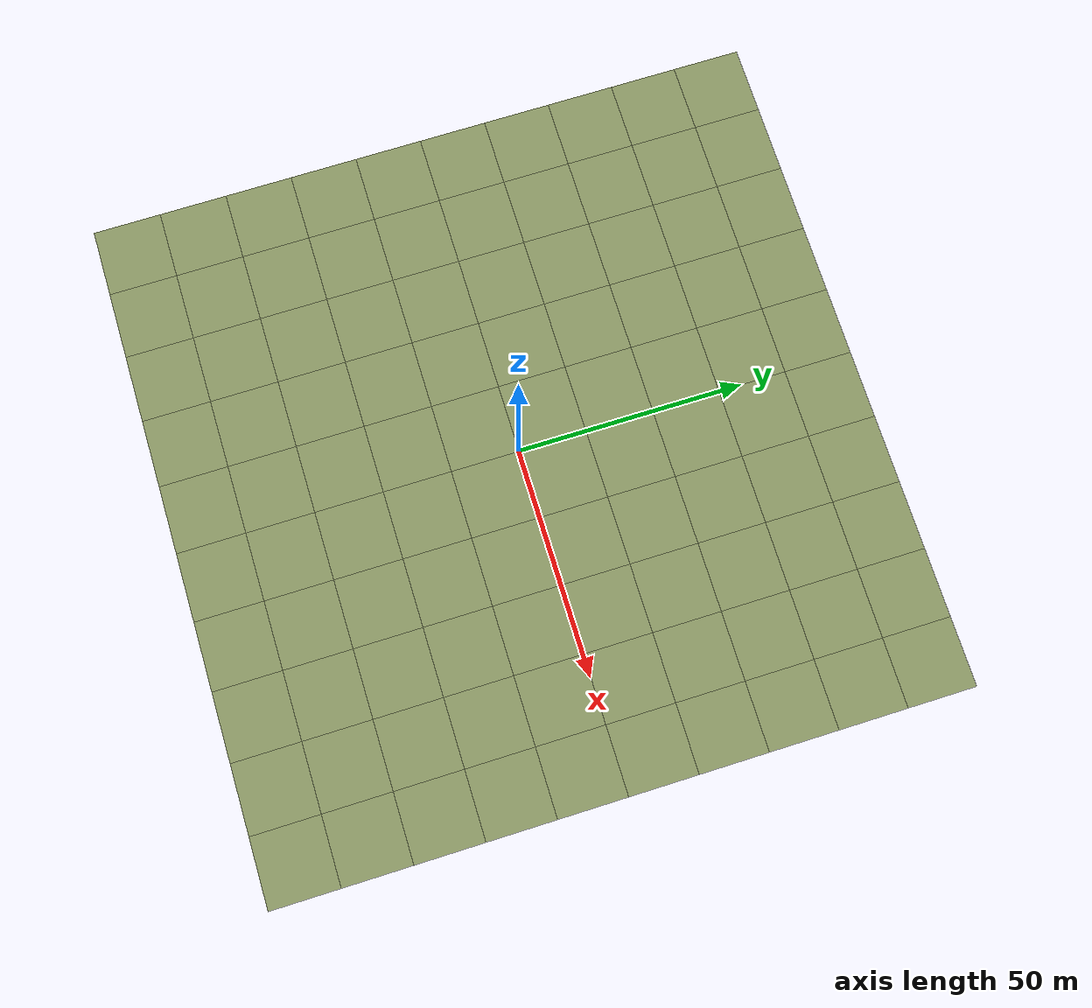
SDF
<?xml version="1.0" ?>
<sdf version="1.5">
  <model name="grass_plane_fine">
    <static>true</static>
    <link name="link">
      <collision name="collision">
        <geometry>
          <box>
            <size>150 150 .1</size>
          </box>
        </geometry>
      </collision>
      <visual name="v0_0">
        <cast_shadows>false</cast_shadows>
        <pose>-67.5 -67.5 0 0 0 4.7123889804</pose>
        <geometry>
          <box>
            <size>15 15 .1</size>
          </box>
        </geometry>
        <material>
          <ambient>0.4 0.45 0.3 1</ambient>
          <diffuse>0.55 0.6 0.4 1</diffuse>
          <specular>0.1 0.1 0.1 1</specular>
          <pbr>
            <metal>
              <albedo_map>materials/textures/grass_fine.jpg</albedo_map>
              <metalness>0.0</metalness>
              <roughness>1.0</roughness>
            </metal>
          </pbr>
        </material>
      </visual>
      <visual name="v0_1">
        <cast_shadows>false</cast_shadows>
        <pose>-67.5 -52.5 0 0 0 4.7123889804</pose>
        <geometry>
          <box>
            <size>15 15 .1</size>
          </box>
        </geometry>
        <material>
          <ambient>0.4 0.45 0.3 1</ambient>
          <diffuse>0.55 0.6 0.4 1</diffuse>
          <specular>0.1 0.1 0.1 1</specular>
          <pbr>
            <metal>
              <albedo_map>materials/textures/grass_fine.jpg</albedo_map>
              <metalness>0.0</metalness>
              <roughness>1.0</roughness>
            </metal>
          </pbr>
        </material>
      </visual>
      <visual name="v0_2">
        <cast_shadows>false</cast_shadows>
        <pose>-67.5 -37.5 0 0 0 4.7123889804</pose>
        <geometry>
          <box>
            <size>15 15 .1</size>
          </box>
        </geometry>
        <material>
          <ambient>0.4 0.45 0.3 1</ambient>
          <diffuse>0.55 0.6 0.4 1</diffuse>
          <specular>0.1 0.1 0.1 1</specular>
          <pbr>
            <metal>
              <albedo_map>materials/textures/grass_fine.jpg</albedo_map>
              <metalness>0.0</metalness>
              <roughness>1.0</roughness>
            </metal>
          </pbr>
        </material>
      </visual>
      <visual name="v0_3">
        <cast_shadows>false</cast_shadows>
        <pose>-67.5 -22.5 0 0 0 4.7123889804</pose>
        <geometry>
          <box>
            <size>15 15 .1</size>
          </box>
        </geometry>
        <material>
          <ambient>0.4 0.45 0.3 1</ambient>
          <diffuse>0.55 0.6 0.4 1</diffuse>
          <specular>0.1 0.1 0.1 1</specular>
          <pbr>
            <metal>
              <albedo_map>materials/textures/grass_fine.jpg</albedo_map>
              <metalness>0.0</metalness>
              <roughness>1.0</roughness>
            </metal>
          </pbr>
        </material>
      </visual>
      <visual name="v0_4">
        <cast_shadows>false</cast_shadows>
        <pose>-67.5 -7.5 0 0 0 0.0000000000</pose>
        <geometry>
          <box>
            <size>15 15 .1</size>
          </box>
        </geometry>
        <material>
          <ambient>0.4 0.45 0.3 1</ambient>
          <diffuse>0.55 0.6 0.4 1</diffuse>
          <specular>0.1 0.1 0.1 1</specular>
          <pbr>
            <metal>
              <albedo_map>materials/textures/grass_fine.jpg</albedo_map>
              <metalness>0.0</metalness>
              <roughness>1.0</roughness>
            </metal>
          </pbr>
        </material>
      </visual>
      <visual name="v0_5">
        <cast_shadows>false</cast_shadows>
        <pose>-67.5 7.5 0 0 0 4.7123889804</pose>
        <geometry>
          <box>
            <size>15 15 .1</size>
          </box>
        </geometry>
        <material>
          <ambient>0.4 0.45 0.3 1</ambient>
          <diffuse>0.55 0.6 0.4 1</diffuse>
          <specular>0.1 0.1 0.1 1</specular>
          <pbr>
            <metal>
              <albedo_map>materials/textures/grass_fine.jpg</albedo_map>
              <metalness>0.0</metalness>
              <roughness>1.0</roughness>
            </metal>
          </pbr>
        </material>
      </visual>
      <visual name="v0_6">
        <cast_shadows>false</cast_shadows>
        <pose>-67.5 22.5 0 0 0 4.7123889804</pose>
        <geometry>
          <box>
            <size>15 15 .1</size>
          </box>
        </geometry>
        <material>
          <ambient>0.4 0.45 0.3 1</ambient>
          <diffuse>0.55 0.6 0.4 1</diffuse>
          <specular>0.1 0.1 0.1 1</specular>
          <pbr>
            <metal>
              <albedo_map>materials/textures/grass_fine.jpg</albedo_map>
              <metalness>0.0</metalness>
              <roughness>1.0</roughness>
            </metal>
          </pbr>
        </material>
      </visual>
      <visual name="v0_7">
        <cast_shadows>false</cast_shadows>
        <pose>-67.5 37.5 0 0 0 1.5707963268</pose>
        <geometry>
          <box>
            <size>15 15 .1</size>
          </box>
        </geometry>
        <material>
          <ambient>0.4 0.45 0.3 1</ambient>
          <diffuse>0.55 0.6 0.4 1</diffuse>
          <specular>0.1 0.1 0.1 1</specular>
          <pbr>
            <metal>
              <albedo_map>materials/textures/grass_fine.jpg</albedo_map>
              <metalness>0.0</metalness>
              <roughness>1.0</roughness>
            </metal>
          </pbr>
        </material>
      </visual>
      <visual name="v0_8">
        <cast_shadows>false</cast_shadows>
        <pose>-67.5 52.5 0 0 0 0.0000000000</pose>
        <geometry>
          <box>
            <size>15 15 .1</size>
          </box>
        </geometry>
        <material>
          <ambient>0.4 0.45 0.3 1</ambient>
          <diffuse>0.55 0.6 0.4 1</diffuse>
          <specular>0.1 0.1 0.1 1</specular>
          <pbr>
            <metal>
              <albedo_map>materials/textures/grass_fine.jpg</albedo_map>
              <metalness>0.0</metalness>
              <roughness>1.0</roughness>
            </metal>
          </pbr>
        </material>
      </visual>
      <visual name="v0_9">
        <cast_shadows>false</cast_shadows>
        <pose>-67.5 67.5 0 0 0 0.0000000000</pose>
        <geometry>
          <box>
            <size>15 15 .1</size>
          </box>
        </geometry>
        <material>
          <ambient>0.4 0.45 0.3 1</ambient>
          <diffuse>0.55 0.6 0.4 1</diffuse>
          <specular>0.1 0.1 0.1 1</specular>
          <pbr>
            <metal>
              <albedo_map>materials/textures/grass_fine.jpg</albedo_map>
              <metalness>0.0</metalness>
              <roughness>1.0</roughness>
            </metal>
          </pbr>
        </material>
      </visual>
      <visual name="v1_0">
        <cast_shadows>false</cast_shadows>
        <pose>-52.5 -67.5 0 0 0 4.7123889804</pose>
        <geometry>
          <box>
            <size>15 15 .1</size>
          </box>
        </geometry>
        <material>
          <ambient>0.4 0.45 0.3 1</ambient>
          <diffuse>0.55 0.6 0.4 1</diffuse>
          <specular>0.1 0.1 0.1 1</specular>
          <pbr>
            <metal>
              <albedo_map>materials/textures/grass_fine.jpg</albedo_map>
              <metalness>0.0</metalness>
              <roughness>1.0</roughness>
            </metal>
          </pbr>
        </material>
      </visual>
      <visual name="v1_1">
        <cast_shadows>false</cast_shadows>
        <pose>-52.5 -52.5 0 0 0 4.7123889804</pose>
        <geometry>
          <box>
            <size>15 15 .1</size>
          </box>
        </geometry>
        <material>
          <ambient>0.4 0.45 0.3 1</ambient>
          <diffuse>0.55 0.6 0.4 1</diffuse>
          <specular>0.1 0.1 0.1 1</specular>
          <pbr>
            <metal>
              <albedo_map>materials/textures/grass_fine.jpg</albedo_map>
              <metalness>0.0</metalness>
              <roughness>1.0</roughness>
            </metal>
          </pbr>
        </material>
      </visual>
      <visual name="v1_2">
        <cast_shadows>false</cast_shadows>
        <pose>-52.5 -37.5 0 0 0 3.1415926536</pose>
        <geometry>
          <box>
            <size>15 15 .1</size>
          </box>
        </geometry>
        <material>
          <ambient>0.4 0.45 0.3 1</ambient>
          <diffuse>0.55 0.6 0.4 1</diffuse>
          <specular>0.1 0.1 0.1 1</specular>
          <pbr>
            <metal>
              <albedo_map>materials/textures/grass_fine.jpg</albedo_map>
              <metalness>0.0</metalness>
              <roughness>1.0</roughness>
            </metal>
          </pbr>
        </material>
      </visual>
      <visual name="v1_3">
        <cast_shadows>false</cast_shadows>
        <pose>-52.5 -22.5 0 0 0 3.1415926536</pose>
        <geometry>
          <box>
            <size>15 15 .1</size>
          </box>
        </geometry>
        <material>
          <ambient>0.4 0.45 0.3 1</ambient>
          <diffuse>0.55 0.6 0.4 1</diffuse>
          <specular>0.1 0.1 0.1 1</specular>
          <pbr>
            <metal>
              <albedo_map>materials/textures/grass_fine.jpg</albedo_map>
              <metalness>0.0</metalness>
              <roughness>1.0</roughness>
            </metal>
          </pbr>
        </material>
      </visual>
      <visual name="v1_4">
        <cast_shadows>false</cast_shadows>
        <pose>-52.5 -7.5 0 0 0 4.7123889804</pose>
        <geometry>
          <box>
            <size>15 15 .1</size>
          </box>
        </geometry>
        <material>
          <ambient>0.4 0.45 0.3 1</ambient>
          <diffuse>0.55 0.6 0.4 1</diffuse>
          <specular>0.1 0.1 0.1 1</specular>
          <pbr>
            <metal>
              <albedo_map>materials/textures/grass_fine.jpg</albedo_map>
              <metalness>0.0</metalness>
              <roughness>1.0</roughness>
            </metal>
          </pbr>
        </material>
      </visual>
      <visual name="v1_5">
        <cast_shadows>false</cast_shadows>
        <pose>-52.5 7.5 0 0 0 0.0000000000</pose>
        <geometry>
          <box>
            <size>15 15 .1</size>
          </box>
        </geometry>
        <material>
          <ambient>0.4 0.45 0.3 1</ambient>
          <diffuse>0.55 0.6 0.4 1</diffuse>
          <specular>0.1 0.1 0.1 1</specular>
          <pbr>
            <metal>
              <albedo_map>materials/textures/grass_fine.jpg</albedo_map>
              <metalness>0.0</metalness>
              <roughness>1.0</roughness>
            </metal>
          </pbr>
        </material>
      </visual>
      <visual name="v1_6">
        <cast_shadows>false</cast_shadows>
        <pose>-52.5 22.5 0 0 0 4.7123889804</pose>
        <geometry>
          <box>
            <size>15 15 .1</size>
          </box>
        </geometry>
        <material>
          <ambient>0.4 0.45 0.3 1</ambient>
          <diffuse>0.55 0.6 0.4 1</diffuse>
          <specular>0.1 0.1 0.1 1</specular>
          <pbr>
            <metal>
              <albedo_map>materials/textures/grass_fine.jpg</albedo_map>
              <metalness>0.0</metalness>
              <roughness>1.0</roughness>
            </metal>
          </pbr>
        </material>
      </visual>
      <visual name="v1_7">
        <cast_shadows>false</cast_shadows>
        <pose>-52.5 37.5 0 0 0 4.7123889804</pose>
        <geometry>
          <box>
            <size>15 15 .1</size>
          </box>
        </geometry>
        <material>
          <ambient>0.4 0.45 0.3 1</ambient>
          <diffuse>0.55 0.6 0.4 1</diffuse>
          <specular>0.1 0.1 0.1 1</specular>
          <pbr>
            <metal>
              <albedo_map>materials/textures/grass_fine.jpg</albedo_map>
              <metalness>0.0</metalness>
              <roughness>1.0</roughness>
            </metal>
          </pbr>
        </material>
      </visual>
      <visual name="v1_8">
        <cast_shadows>false</cast_shadows>
        <pose>-52.5 52.5 0 0 0 0.0000000000</pose>
        <geometry>
          <box>
            <size>15 15 .1</size>
          </box>
        </geometry>
        <material>
          <ambient>0.4 0.45 0.3 1</ambient>
          <diffuse>0.55 0.6 0.4 1</diffuse>
          <specular>0.1 0.1 0.1 1</specular>
          <pbr>
            <metal>
              <albedo_map>materials/textures/grass_fine.jpg</albedo_map>
              <metalness>0.0</metalness>
              <roughness>1.0</roughness>
            </metal>
          </pbr>
        </material>
      </visual>
      <visual name="v1_9">
        <cast_shadows>false</cast_shadows>
        <pose>-52.5 67.5 0 0 0 4.7123889804</pose>
        <geometry>
          <box>
            <size>15 15 .1</size>
          </box>
        </geometry>
        <material>
          <ambient>0.4 0.45 0.3 1</ambient>
          <diffuse>0.55 0.6 0.4 1</diffuse>
          <specular>0.1 0.1 0.1 1</specular>
          <pbr>
            <metal>
              <albedo_map>materials/textures/grass_fine.jpg</albedo_map>
              <metalness>0.0</metalness>
              <roughness>1.0</roughness>
            </metal>
          </pbr>
        </material>
      </visual>
      <visual name="v2_0">
        <cast_shadows>false</cast_shadows>
        <pose>-37.5 -67.5 0 0 0 4.7123889804</pose>
        <geometry>
          <box>
            <size>15 15 .1</size>
          </box>
        </geometry>
        <material>
          <ambient>0.4 0.45 0.3 1</ambient>
          <diffuse>0.55 0.6 0.4 1</diffuse>
          <specular>0.1 0.1 0.1 1</specular>
          <pbr>
            <metal>
              <albedo_map>materials/textures/grass_fine.jpg</albedo_map>
              <metalness>0.0</metalness>
              <roughness>1.0</roughness>
            </metal>
          </pbr>
        </material>
      </visual>
      <visual name="v2_1">
        <cast_shadows>false</cast_shadows>
        <pose>-37.5 -52.5 0 0 0 1.5707963268</pose>
        <geometry>
          <box>
            <size>15 15 .1</size>
          </box>
        </geometry>
        <material>
          <ambient>0.4 0.45 0.3 1</ambient>
          <diffuse>0.55 0.6 0.4 1</diffuse>
          <specular>0.1 0.1 0.1 1</specular>
          <pbr>
            <metal>
              <albedo_map>materials/textures/grass_fine.jpg</albedo_map>
              <metalness>0.0</metalness>
              <roughness>1.0</roughness>
            </metal>
          </pbr>
        </material>
      </visual>
      <visual name="v2_2">
        <cast_shadows>false</cast_shadows>
        <pose>-37.5 -37.5 0 0 0 1.5707963268</pose>
        <geometry>
          <box>
            <size>15 15 .1</size>
          </box>
        </geometry>
        <material>
          <ambient>0.4 0.45 0.3 1</ambient>
          <diffuse>0.55 0.6 0.4 1</diffuse>
          <specular>0.1 0.1 0.1 1</specular>
          <pbr>
            <metal>
              <albedo_map>materials/textures/grass_fine.jpg</albedo_map>
              <metalness>0.0</metalness>
              <roughness>1.0</roughness>
            </metal>
          </pbr>
        </material>
      </visual>
      <visual name="v2_3">
        <cast_shadows>false</cast_shadows>
        <pose>-37.5 -22.5 0 0 0 4.7123889804</pose>
        <geometry>
          <box>
            <size>15 15 .1</size>
          </box>
        </geometry>
        <material>
          <ambient>0.4 0.45 0.3 1</ambient>
          <diffuse>0.55 0.6 0.4 1</diffuse>
          <specular>0.1 0.1 0.1 1</specular>
          <pbr>
            <metal>
              <albedo_map>materials/textures/grass_fine.jpg</albedo_map>
              <metalness>0.0</metalness>
              <roughness>1.0</roughness>
            </metal>
          </pbr>
        </material>
      </visual>
      <visual name="v2_4">
        <cast_shadows>false</cast_shadows>
        <pose>-37.5 -7.5 0 0 0 4.7123889804</pose>
        <geometry>
          <box>
            <size>15 15 .1</size>
          </box>
        </geometry>
        <material>
          <ambient>0.4 0.45 0.3 1</ambient>
          <diffuse>0.55 0.6 0.4 1</diffuse>
          <specular>0.1 0.1 0.1 1</specular>
          <pbr>
            <metal>
              <albedo_map>materials/textures/grass_fine.jpg</albedo_map>
              <metalness>0.0</metalness>
              <roughness>1.0</roughness>
            </metal>
          </pbr>
        </material>
      </visual>
      <visual name="v2_5">
        <cast_shadows>false</cast_shadows>
        <pose>-37.5 7.5 0 0 0 0.0000000000</pose>
        <geometry>
          <box>
            <size>15 15 .1</size>
          </box>
        </geometry>
        <material>
          <ambient>0.4 0.45 0.3 1</ambient>
          <diffuse>0.55 0.6 0.4 1</diffuse>
          <specular>0.1 0.1 0.1 1</specular>
          <pbr>
            <metal>
              <albedo_map>materials/textures/grass_fine.jpg</albedo_map>
              <metalness>0.0</metalness>
              <roughness>1.0</roughness>
            </metal>
          </pbr>
        </material>
      </visual>
      <visual name="v2_6">
        <cast_shadows>false</cast_shadows>
        <pose>-37.5 22.5 0 0 0 3.1415926536</pose>
        <geometry>
          <box>
            <size>15 15 .1</size>
          </box>
        </geometry>
        <material>
          <ambient>0.4 0.45 0.3 1</ambient>
          <diffuse>0.55 0.6 0.4 1</diffuse>
          <specular>0.1 0.1 0.1 1</specular>
          <pbr>
            <metal>
              <albedo_map>materials/textures/grass_fine.jpg</albedo_map>
              <metalness>0.0</metalness>
              <roughness>1.0</roughness>
            </metal>
          </pbr>
        </material>
      </visual>
      <visual name="v2_7">
        <cast_shadows>false</cast_shadows>
        <pose>-37.5 37.5 0 0 0 1.5707963268</pose>
        <geometry>
          <box>
            <size>15 15 .1</size>
          </box>
        </geometry>
        <material>
          <ambient>0.4 0.45 0.3 1</ambient>
          <diffuse>0.55 0.6 0.4 1</diffuse>
          <specular>0.1 0.1 0.1 1</specular>
          <pbr>
            <metal>
              <albedo_map>materials/textures/grass_fine.jpg</albedo_map>
              <metalness>0.0</metalness>
              <roughness>1.0</roughness>
            </metal>
          </pbr>
        </material>
      </visual>
      <visual name="v2_8">
        <cast_shadows>false</cast_shadows>
        <pose>-37.5 52.5 0 0 0 1.5707963268</pose>
        <geometry>
          <box>
            <size>15 15 .1</size>
          </box>
        </geometry>
        <material>
          <ambient>0.4 0.45 0.3 1</ambient>
          <diffuse>0.55 0.6 0.4 1</diffuse>
          <specular>0.1 0.1 0.1 1</specular>
          <pbr>
            <metal>
              <albedo_map>materials/textures/grass_fine.jpg</albedo_map>
              <metalness>0.0</metalness>
              <roughness>1.0</roughness>
            </metal>
          </pbr>
        </material>
      </visual>
      <visual name="v2_9">
        <cast_shadows>false</cast_shadows>
        <pose>-37.5 67.5 0 0 0 4.7123889804</pose>
        <geometry>
          <box>
            <size>15 15 .1</size>
          </box>
        </geometry>
        <material>
          <ambient>0.4 0.45 0.3 1</ambient>
          <diffuse>0.55 0.6 0.4 1</diffuse>
          <specular>0.1 0.1 0.1 1</specular>
          <pbr>
            <metal>
              <albedo_map>materials/textures/grass_fine.jpg</albedo_map>
              <metalness>0.0</metalness>
              <roughness>1.0</roughness>
            </metal>
          </pbr>
        </material>
      </visual>
      <visual name="v3_0">
        <cast_shadows>false</cast_shadows>
        <pose>-22.5 -67.5 0 0 0 3.1415926536</pose>
        <geometry>
          <box>
            <size>15 15 .1</size>
          </box>
        </geometry>
        <material>
          <ambient>0.4 0.45 0.3 1</ambient>
          <diffuse>0.55 0.6 0.4 1</diffuse>
          <specular>0.1 0.1 0.1 1</specular>
          <pbr>
            <metal>
              <albedo_map>materials/textures/grass_fine.jpg</albedo_map>
              <metalness>0.0</metalness>
              <roughness>1.0</roughness>
            </metal>
          </pbr>
        </material>
      </visual>
      <visual name="v3_1">
        <cast_shadows>false</cast_shadows>
        <pose>-22.5 -52.5 0 0 0 1.5707963268</pose>
        <geometry>
          <box>
            <size>15 15 .1</size>
          </box>
        </geometry>
        <material>
          <ambient>0.4 0.45 0.3 1</ambient>
          <diffuse>0.55 0.6 0.4 1</diffuse>
          <specular>0.1 0.1 0.1 1</specular>
          <pbr>
            <metal>
              <albedo_map>materials/textures/grass_fine.jpg</albedo_map>
              <metalness>0.0</metalness>
              <roughness>1.0</roughness>
            </metal>
          </pbr>
        </material>
      </visual>
      <visual name="v3_2">
        <cast_shadows>false</cast_shadows>
        <pose>-22.5 -37.5 0 0 0 4.7123889804</pose>
        <geometry>
          <box>
            <size>15 15 .1</size>
          </box>
        </geometry>
        <material>
          <ambient>0.4 0.45 0.3 1</ambient>
          <diffuse>0.55 0.6 0.4 1</diffuse>
          <specular>0.1 0.1 0.1 1</specular>
          <pbr>
            <metal>
              <albedo_map>materials/textures/grass_fine.jpg</albedo_map>
              <metalness>0.0</metalness>
              <roughness>1.0</roughness>
            </metal>
          </pbr>
        </material>
      </visual>
      <visual name="v3_3">
        <cast_shadows>false</cast_shadows>
        <pose>-22.5 -22.5 0 0 0 3.1415926536</pose>
        <geometry>
          <box>
            <size>15 15 .1</size>
          </box>
        </geometry>
        <material>
          <ambient>0.4 0.45 0.3 1</ambient>
          <diffuse>0.55 0.6 0.4 1</diffuse>
          <specular>0.1 0.1 0.1 1</specular>
          <pbr>
            <metal>
              <albedo_map>materials/textures/grass_fine.jpg</albedo_map>
              <metalness>0.0</metalness>
              <roughness>1.0</roughness>
            </metal>
          </pbr>
        </material>
      </visual>
      <visual name="v3_4">
        <cast_shadows>false</cast_shadows>
        <pose>-22.5 -7.5 0 0 0 4.7123889804</pose>
        <geometry>
          <box>
            <size>15 15 .1</size>
          </box>
        </geometry>
        <material>
          <ambient>0.4 0.45 0.3 1</ambient>
          <diffuse>0.55 0.6 0.4 1</diffuse>
          <specular>0.1 0.1 0.1 1</specular>
          <pbr>
            <metal>
              <albedo_map>materials/textures/grass_fine.jpg</albedo_map>
              <metalness>0.0</metalness>
              <roughness>1.0</roughness>
            </metal>
          </pbr>
        </material>
      </visual>
      <visual name="v3_5">
        <cast_shadows>false</cast_shadows>
        <pose>-22.5 7.5 0 0 0 0.0000000000</pose>
        <geometry>
          <box>
            <size>15 15 .1</size>
          </box>
        </geometry>
        <material>
          <ambient>0.4 0.45 0.3 1</ambient>
          <diffuse>0.55 0.6 0.4 1</diffuse>
          <specular>0.1 0.1 0.1 1</specular>
          <pbr>
            <metal>
              <albedo_map>materials/textures/grass_fine.jpg</albedo_map>
              <metalness>0.0</metalness>
              <roughness>1.0</roughness>
            </metal>
          </pbr>
        </material>
      </visual>
      <visual name="v3_6">
        <cast_shadows>false</cast_shadows>
        <pose>-22.5 22.5 0 0 0 4.7123889804</pose>
        <geometry>
          <box>
            <size>15 15 .1</size>
          </box>
        </geometry>
        <material>
          <ambient>0.4 0.45 0.3 1</ambient>
          <diffuse>0.55 0.6 0.4 1</diffuse>
          <specular>0.1 0.1 0.1 1</specular>
          <pbr>
            <metal>
              <albedo_map>materials/textures/grass_fine.jpg</albedo_map>
              <metalness>0.0</metalness>
              <roughness>1.0</roughness>
            </metal>
          </pbr>
        </material>
      </visual>
      <visual name="v3_7">
        <cast_shadows>false</cast_shadows>
        <pose>-22.5 37.5 0 0 0 4.7123889804</pose>
        <geometry>
          <box>
            <size>15 15 .1</size>
          </box>
        </geometry>
        <material>
          <ambient>0.4 0.45 0.3 1</ambient>
          <diffuse>0.55 0.6 0.4 1</diffuse>
          <specular>0.1 0.1 0.1 1</specular>
          <pbr>
            <metal>
              <albedo_map>materials/textures/grass_fine.jpg</albedo_map>
              <metalness>0.0</metalness>
              <roughness>1.0</roughness>
            </metal>
          </pbr>
        </material>
      </visual>
      <visual name="v3_8">
        <cast_shadows>false</cast_shadows>
        <pose>-22.5 52.5 0 0 0 3.1415926536</pose>
        <geometry>
          <box>
            <size>15 15 .1</size>
          </box>
        </geometry>
        <material>
          <ambient>0.4 0.45 0.3 1</ambient>
          <diffuse>0.55 0.6 0.4 1</diffuse>
          <specular>0.1 0.1 0.1 1</specular>
          <pbr>
            <metal>
              <albedo_map>materials/textures/grass_fine.jpg</albedo_map>
              <metalness>0.0</metalness>
              <roughness>1.0</roughness>
            </metal>
          </pbr>
        </material>
      </visual>
      <visual name="v3_9">
        <cast_shadows>false</cast_shadows>
        <pose>-22.5 67.5 0 0 0 1.5707963268</pose>
        <geometry>
          <box>
            <size>15 15 .1</size>
          </box>
        </geometry>
        <material>
          <ambient>0.4 0.45 0.3 1</ambient>
          <diffuse>0.55 0.6 0.4 1</diffuse>
          <specular>0.1 0.1 0.1 1</specular>
          <pbr>
            <metal>
              <albedo_map>materials/textures/grass_fine.jpg</albedo_map>
              <metalness>0.0</metalness>
              <roughness>1.0</roughness>
            </metal>
          </pbr>
        </material>
      </visual>
      <visual name="v4_0">
        <cast_shadows>false</cast_shadows>
        <pose>-7.5 -67.5 0 0 0 1.5707963268</pose>
        <geometry>
          <box>
            <size>15 15 .1</size>
          </box>
        </geometry>
        <material>
          <ambient>0.4 0.45 0.3 1</ambient>
          <diffuse>0.55 0.6 0.4 1</diffuse>
          <specular>0.1 0.1 0.1 1</specular>
          <pbr>
            <metal>
              <albedo_map>materials/textures/grass_fine.jpg</albedo_map>
              <metalness>0.0</metalness>
              <roughness>1.0</roughness>
            </metal>
          </pbr>
        </material>
      </visual>
      <visual name="v4_1">
        <cast_shadows>false</cast_shadows>
        <pose>-7.5 -52.5 0 0 0 0.0000000000</pose>
        <geometry>
          <box>
            <size>15 15 .1</size>
          </box>
        </geometry>
        <material>
          <ambient>0.4 0.45 0.3 1</ambient>
          <diffuse>0.55 0.6 0.4 1</diffuse>
          <specular>0.1 0.1 0.1 1</specular>
          <pbr>
            <metal>
              <albedo_map>materials/textures/grass_fine.jpg</albedo_map>
              <metalness>0.0</metalness>
              <roughness>1.0</roughness>
            </metal>
          </pbr>
        </material>
      </visual>
      <visual name="v4_2">
        <cast_shadows>false</cast_shadows>
        <pose>-7.5 -37.5 0 0 0 1.5707963268</pose>
        <geometry>
          <box>
            <size>15 15 .1</size>
          </box>
        </geometry>
        <material>
          <ambient>0.4 0.45 0.3 1</ambient>
          <diffuse>0.55 0.6 0.4 1</diffuse>
          <specular>0.1 0.1 0.1 1</specular>
          <pbr>
            <metal>
              <albedo_map>materials/textures/grass_fine.jpg</albedo_map>
              <metalness>0.0</metalness>
              <roughness>1.0</roughness>
            </metal>
          </pbr>
        </material>
      </visual>
      <visual name="v4_3">
        <cast_shadows>false</cast_shadows>
        <pose>-7.5 -22.5 0 0 0 4.7123889804</pose>
        <geometry>
          <box>
            <size>15 15 .1</size>
          </box>
        </geometry>
        <material>
          <ambient>0.4 0.45 0.3 1</ambient>
          <diffuse>0.55 0.6 0.4 1</diffuse>
          <specular>0.1 0.1 0.1 1</specular>
          <pbr>
            <metal>
              <albedo_map>materials/textures/grass_fine.jpg</albedo_map>
              <metalness>0.0</metalness>
              <roughness>1.0</roughness>
            </metal>
          </pbr>
        </material>
      </visual>
      <visual name="v4_4">
        <cast_shadows>false</cast_shadows>
        <pose>-7.5 -7.5 0 0 0 1.5707963268</pose>
        <geometry>
          <box>
            <size>15 15 .1</size>
          </box>
        </geometry>
        <material>
          <ambient>0.4 0.45 0.3 1</ambient>
          <diffuse>0.55 0.6 0.4 1</diffuse>
          <specular>0.1 0.1 0.1 1</specular>
          <pbr>
            <metal>
              <albedo_map>materials/textures/grass_fine.jpg</albedo_map>
              <metalness>0.0</metalness>
              <roughness>1.0</roughness>
            </metal>
          </pbr>
        </material>
      </visual>
      <visual name="v4_5">
        <cast_shadows>false</cast_shadows>
        <pose>-7.5 7.5 0 0 0 4.7123889804</pose>
        <geometry>
          <box>
            <size>15 15 .1</size>
          </box>
        </geometry>
        <material>
          <ambient>0.4 0.45 0.3 1</ambient>
          <diffuse>0.55 0.6 0.4 1</diffuse>
          <specular>0.1 0.1 0.1 1</specular>
          <pbr>
            <metal>
              <albedo_map>materials/textures/grass_fine.jpg</albedo_map>
              <metalness>0.0</metalness>
              <roughness>1.0</roughness>
            </metal>
          </pbr>
        </material>
      </visual>
      <visual name="v4_6">
        <cast_shadows>false</cast_shadows>
        <pose>-7.5 22.5 0 0 0 1.5707963268</pose>
        <geometry>
          <box>
            <size>15 15 .1</size>
          </box>
        </geometry>
        <material>
          <ambient>0.4 0.45 0.3 1</ambient>
          <diffuse>0.55 0.6 0.4 1</diffuse>
          <specular>0.1 0.1 0.1 1</specular>
          <pbr>
            <metal>
              <albedo_map>materials/textures/grass_fine.jpg</albedo_map>
              <metalness>0.0</metalness>
              <roughness>1.0</roughness>
            </metal>
          </pbr>
        </material>
      </visual>
      <visual name="v4_7">
        <cast_shadows>false</cast_shadows>
        <pose>-7.5 37.5 0 0 0 3.1415926536</pose>
        <geometry>
          <box>
            <size>15 15 .1</size>
          </box>
        </geometry>
        <material>
          <ambient>0.4 0.45 0.3 1</ambient>
          <diffuse>0.55 0.6 0.4 1</diffuse>
          <specular>0.1 0.1 0.1 1</specular>
          <pbr>
            <metal>
              <albedo_map>materials/textures/grass_fine.jpg</albedo_map>
              <metalness>0.0</metalness>
              <roughness>1.0</roughness>
            </metal>
          </pbr>
        </material>
      </visual>
      <visual name="v4_8">
        <cast_shadows>false</cast_shadows>
        <pose>-7.5 52.5 0 0 0 1.5707963268</pose>
        <geometry>
          <box>
            <size>15 15 .1</size>
          </box>
        </geometry>
        <material>
          <ambient>0.4 0.45 0.3 1</ambient>
          <diffuse>0.55 0.6 0.4 1</diffuse>
          <specular>0.1 0.1 0.1 1</specular>
          <pbr>
            <metal>
              <albedo_map>materials/textures/grass_fine.jpg</albedo_map>
              <metalness>0.0</metalness>
              <roughness>1.0</roughness>
            </metal>
          </pbr>
        </material>
      </visual>
      <visual name="v4_9">
        <cast_shadows>false</cast_shadows>
        <pose>-7.5 67.5 0 0 0 3.1415926536</pose>
        <geometry>
          <box>
            <size>15 15 .1</size>
          </box>
        </geometry>
        <material>
          <ambient>0.4 0.45 0.3 1</ambient>
          <diffuse>0.55 0.6 0.4 1</diffuse>
          <specular>0.1 0.1 0.1 1</specular>
          <pbr>
            <metal>
              <albedo_map>materials/textures/grass_fine.jpg</albedo_map>
              <metalness>0.0</metalness>
              <roughness>1.0</roughness>
            </metal>
          </pbr>
        </material>
      </visual>
      <visual name="v5_0">
        <cast_shadows>false</cast_shadows>
        <pose>7.5 -67.5 0 0 0 1.5707963268</pose>
        <geometry>
          <box>
            <size>15 15 .1</size>
          </box>
        </geometry>
        <material>
          <ambient>0.4 0.45 0.3 1</ambient>
          <diffuse>0.55 0.6 0.4 1</diffuse>
          <specular>0.1 0.1 0.1 1</specular>
          <pbr>
            <metal>
              <albedo_map>materials/textures/grass_fine.jpg</albedo_map>
              <metalness>0.0</metalness>
              <roughness>1.0</roughness>
            </metal>
          </pbr>
        </material>
      </visual>
      <visual name="v5_1">
        <cast_shadows>false</cast_shadows>
        <pose>7.5 -52.5 0 0 0 4.7123889804</pose>
        <geometry>
          <box>
            <size>15 15 .1</size>
          </box>
        </geometry>
        <material>
          <ambient>0.4 0.45 0.3 1</ambient>
          <diffuse>0.55 0.6 0.4 1</diffuse>
          <specular>0.1 0.1 0.1 1</specular>
          <pbr>
            <metal>
              <albedo_map>materials/textures/grass_fine.jpg</albedo_map>
              <metalness>0.0</metalness>
              <roughness>1.0</roughness>
            </metal>
          </pbr>
        </material>
      </visual>
      <visual name="v5_2">
        <cast_shadows>false</cast_shadows>
        <pose>7.5 -37.5 0 0 0 3.1415926536</pose>
        <geometry>
          <box>
            <size>15 15 .1</size>
          </box>
        </geometry>
        <material>
          <ambient>0.4 0.45 0.3 1</ambient>
          <diffuse>0.55 0.6 0.4 1</diffuse>
          <specular>0.1 0.1 0.1 1</specular>
          <pbr>
            <metal>
              <albedo_map>materials/textures/grass_fine.jpg</albedo_map>
              <metalness>0.0</metalness>
              <roughness>1.0</roughness>
            </metal>
          </pbr>
        </material>
      </visual>
      <visual name="v5_3">
        <cast_shadows>false</cast_shadows>
        <pose>7.5 -22.5 0 0 0 0.0000000000</pose>
        <geometry>
          <box>
            <size>15 15 .1</size>
          </box>
        </geometry>
        <material>
          <ambient>0.4 0.45 0.3 1</ambient>
          <diffuse>0.55 0.6 0.4 1</diffuse>
          <specular>0.1 0.1 0.1 1</specular>
          <pbr>
            <metal>
              <albedo_map>materials/textures/grass_fine.jpg</albedo_map>
              <metalness>0.0</metalness>
              <roughness>1.0</roughness>
            </metal>
          </pbr>
        </material>
      </visual>
      <visual name="v5_4">
        <cast_shadows>false</cast_shadows>
        <pose>7.5 -7.5 0 0 0 4.7123889804</pose>
        <geometry>
          <box>
            <size>15 15 .1</size>
          </box>
        </geometry>
        <material>
          <ambient>0.4 0.45 0.3 1</ambient>
          <diffuse>0.55 0.6 0.4 1</diffuse>
          <specular>0.1 0.1 0.1 1</specular>
          <pbr>
            <metal>
              <albedo_map>materials/textures/grass_fine.jpg</albedo_map>
              <metalness>0.0</metalness>
              <roughness>1.0</roughness>
            </metal>
          </pbr>
        </material>
      </visual>
      <visual name="v5_5">
        <cast_shadows>false</cast_shadows>
        <pose>7.5 7.5 0 0 0 3.1415926536</pose>
        <geometry>
          <box>
            <size>15 15 .1</size>
          </box>
        </geometry>
        <material>
          <ambient>0.4 0.45 0.3 1</ambient>
          <diffuse>0.55 0.6 0.4 1</diffuse>
          <specular>0.1 0.1 0.1 1</specular>
          <pbr>
            <metal>
              <albedo_map>materials/textures/grass_fine.jpg</albedo_map>
              <metalness>0.0</metalness>
              <roughness>1.0</roughness>
            </metal>
          </pbr>
        </material>
      </visual>
      <visual name="v5_6">
        <cast_shadows>false</cast_shadows>
        <pose>7.5 22.5 0 0 0 3.1415926536</pose>
        <geometry>
          <box>
            <size>15 15 .1</size>
          </box>
        </geometry>
        <material>
          <ambient>0.4 0.45 0.3 1</ambient>
          <diffuse>0.55 0.6 0.4 1</diffuse>
          <specular>0.1 0.1 0.1 1</specular>
          <pbr>
            <metal>
              <albedo_map>materials/textures/grass_fine.jpg</albedo_map>
              <metalness>0.0</metalness>
              <roughness>1.0</roughness>
            </metal>
          </pbr>
        </material>
      </visual>
      <visual name="v5_7">
        <cast_shadows>false</cast_shadows>
        <pose>7.5 37.5 0 0 0 4.7123889804</pose>
        <geometry>
          <box>
            <size>15 15 .1</size>
          </box>
        </geometry>
        <material>
          <ambient>0.4 0.45 0.3 1</ambient>
          <diffuse>0.55 0.6 0.4 1</diffuse>
          <specular>0.1 0.1 0.1 1</specular>
          <pbr>
            <metal>
              <albedo_map>materials/textures/grass_fine.jpg</albedo_map>
              <metalness>0.0</metalness>
              <roughness>1.0</roughness>
            </metal>
          </pbr>
        </material>
      </visual>
      <visual name="v5_8">
        <cast_shadows>false</cast_shadows>
        <pose>7.5 52.5 0 0 0 1.5707963268</pose>
        <geometry>
          <box>
            <size>15 15 .1</size>
          </box>
        </geometry>
        <material>
          <ambient>0.4 0.45 0.3 1</ambient>
          <diffuse>0.55 0.6 0.4 1</diffuse>
          <specular>0.1 0.1 0.1 1</specular>
          <pbr>
            <metal>
              <albedo_map>materials/textures/grass_fine.jpg</albedo_map>
              <metalness>0.0</metalness>
              <roughness>1.0</roughness>
            </metal>
          </pbr>
        </material>
      </visual>
      <visual name="v5_9">
        <cast_shadows>false</cast_shadows>
        <pose>7.5 67.5 0 0 0 0.0000000000</pose>
        <geometry>
          <box>
            <size>15 15 .1</size>
          </box>
        </geometry>
        <material>
          <ambient>0.4 0.45 0.3 1</ambient>
          <diffuse>0.55 0.6 0.4 1</diffuse>
          <specular>0.1 0.1 0.1 1</specular>
          <pbr>
            <metal>
              <albedo_map>materials/textures/grass_fine.jpg</albedo_map>
              <metalness>0.0</metalness>
              <roughness>1.0</roughness>
            </metal>
          </pbr>
        </material>
      </visual>
      <visual name="v6_0">
        <cast_shadows>false</cast_shadows>
        <pose>22.5 -67.5 0 0 0 3.1415926536</pose>
        <geometry>
          <box>
            <size>15 15 .1</size>
          </box>
        </geometry>
        <material>
          <ambient>0.4 0.45 0.3 1</ambient>
          <diffuse>0.55 0.6 0.4 1</diffuse>
          <specular>0.1 0.1 0.1 1</specular>
          <pbr>
            <metal>
              <albedo_map>materials/textures/grass_fine.jpg</albedo_map>
              <metalness>0.0</metalness>
              <roughness>1.0</roughness>
            </metal>
          </pbr>
        </material>
      </visual>
      <visual name="v6_1">
        <cast_shadows>false</cast_shadows>
        <pose>22.5 -52.5 0 0 0 0.0000000000</pose>
        <geometry>
          <box>
            <size>15 15 .1</size>
          </box>
        </geometry>
        <material>
          <ambient>0.4 0.45 0.3 1</ambient>
          <diffuse>0.55 0.6 0.4 1</diffuse>
          <specular>0.1 0.1 0.1 1</specular>
          <pbr>
            <metal>
              <albedo_map>materials/textures/grass_fine.jpg</albedo_map>
              <metalness>0.0</metalness>
              <roughness>1.0</roughness>
            </metal>
          </pbr>
        </material>
      </visual>
      <visual name="v6_2">
        <cast_shadows>false</cast_shadows>
        <pose>22.5 -37.5 0 0 0 0.0000000000</pose>
        <geometry>
          <box>
            <size>15 15 .1</size>
          </box>
        </geometry>
        <material>
          <ambient>0.4 0.45 0.3 1</ambient>
          <diffuse>0.55 0.6 0.4 1</diffuse>
          <specular>0.1 0.1 0.1 1</specular>
          <pbr>
            <metal>
              <albedo_map>materials/textures/grass_fine.jpg</albedo_map>
              <metalness>0.0</metalness>
              <roughness>1.0</roughness>
            </metal>
          </pbr>
        </material>
      </visual>
      <visual name="v6_3">
        <cast_shadows>false</cast_shadows>
        <pose>22.5 -22.5 0 0 0 3.1415926536</pose>
        <geometry>
          <box>
            <size>15 15 .1</size>
          </box>
        </geometry>
        <material>
          <ambient>0.4 0.45 0.3 1</ambient>
          <diffuse>0.55 0.6 0.4 1</diffuse>
          <specular>0.1 0.1 0.1 1</specular>
          <pbr>
            <metal>
              <albedo_map>materials/textures/grass_fine.jpg</albedo_map>
              <metalness>0.0</metalness>
              <roughness>1.0</roughness>
            </metal>
          </pbr>
        </material>
      </visual>
      <visual name="v6_4">
        <cast_shadows>false</cast_shadows>
        <pose>22.5 -7.5 0 0 0 3.1415926536</pose>
        <geometry>
          <box>
            <size>15 15 .1</size>
          </box>
        </geometry>
        <material>
          <ambient>0.4 0.45 0.3 1</ambient>
          <diffuse>0.55 0.6 0.4 1</diffuse>
          <specular>0.1 0.1 0.1 1</specular>
          <pbr>
            <metal>
              <albedo_map>materials/textures/grass_fine.jpg</albedo_map>
              <metalness>0.0</metalness>
              <roughness>1.0</roughness>
            </metal>
          </pbr>
        </material>
      </visual>
      <visual name="v6_5">
        <cast_shadows>false</cast_shadows>
        <pose>22.5 7.5 0 0 0 3.1415926536</pose>
        <geometry>
          <box>
            <size>15 15 .1</size>
          </box>
        </geometry>
        <material>
          <ambient>0.4 0.45 0.3 1</ambient>
          <diffuse>0.55 0.6 0.4 1</diffuse>
          <specular>0.1 0.1 0.1 1</specular>
          <pbr>
            <metal>
              <albedo_map>materials/textures/grass_fine.jpg</albedo_map>
              <metalness>0.0</metalness>
              <roughness>1.0</roughness>
            </metal>
          </pbr>
        </material>
      </visual>
      <visual name="v6_6">
        <cast_shadows>false</cast_shadows>
        <pose>22.5 22.5 0 0 0 4.7123889804</pose>
        <geometry>
          <box>
            <size>15 15 .1</size>
          </box>
        </geometry>
        <material>
          <ambient>0.4 0.45 0.3 1</ambient>
          <diffuse>0.55 0.6 0.4 1</diffuse>
          <specular>0.1 0.1 0.1 1</specular>
          <pbr>
            <metal>
              <albedo_map>materials/textures/grass_fine.jpg</albedo_map>
              <metalness>0.0</metalness>
              <roughness>1.0</roughness>
            </metal>
          </pbr>
        </material>
      </visual>
      <visual name="v6_7">
        <cast_shadows>false</cast_shadows>
        <pose>22.5 37.5 0 0 0 3.1415926536</pose>
        <geometry>
          <box>
            <size>15 15 .1</size>
          </box>
        </geometry>
        <material>
          <ambient>0.4 0.45 0.3 1</ambient>
          <diffuse>0.55 0.6 0.4 1</diffuse>
          <specular>0.1 0.1 0.1 1</specular>
          <pbr>
            <metal>
              <albedo_map>materials/textures/grass_fine.jpg</albedo_map>
              <metalness>0.0</metalness>
              <roughness>1.0</roughness>
            </metal>
          </pbr>
        </material>
      </visual>
      <visual name="v6_8">
        <cast_shadows>false</cast_shadows>
        <pose>22.5 52.5 0 0 0 0.0000000000</pose>
        <geometry>
          <box>
            <size>15 15 .1</size>
          </box>
        </geometry>
        <material>
          <ambient>0.4 0.45 0.3 1</ambient>
          <diffuse>0.55 0.6 0.4 1</diffuse>
          <specular>0.1 0.1 0.1 1</specular>
          <pbr>
            <metal>
              <albedo_map>materials/textures/grass_fine.jpg</albedo_map>
              <metalness>0.0</metalness>
              <roughness>1.0</roughness>
            </metal>
          </pbr>
        </material>
      </visual>
      <visual name="v6_9">
        <cast_shadows>false</cast_shadows>
        <pose>22.5 67.5 0 0 0 3.1415926536</pose>
        <geometry>
          <box>
            <size>15 15 .1</size>
          </box>
        </geometry>
        <material>
          <ambient>0.4 0.45 0.3 1</ambient>
          <diffuse>0.55 0.6 0.4 1</diffuse>
          <specular>0.1 0.1 0.1 1</specular>
          <pbr>
            <metal>
              <albedo_map>materials/textures/grass_fine.jpg</albedo_map>
              <metalness>0.0</metalness>
              <roughness>1.0</roughness>
            </metal>
          </pbr>
        </material>
      </visual>
      <visual name="v7_0">
        <cast_shadows>false</cast_shadows>
        <pose>37.5 -67.5 0 0 0 0.0000000000</pose>
        <geometry>
          <box>
            <size>15 15 .1</size>
          </box>
        </geometry>
        <material>
          <ambient>0.4 0.45 0.3 1</ambient>
          <diffuse>0.55 0.6 0.4 1</diffuse>
          <specular>0.1 0.1 0.1 1</specular>
          <pbr>
            <metal>
              <albedo_map>materials/textures/grass_fine.jpg</albedo_map>
              <metalness>0.0</metalness>
              <roughness>1.0</roughness>
            </metal>
          </pbr>
        </material>
      </visual>
      <visual name="v7_1">
        <cast_shadows>false</cast_shadows>
        <pose>37.5 -52.5 0 0 0 0.0000000000</pose>
        <geometry>
          <box>
            <size>15 15 .1</size>
          </box>
        </geometry>
        <material>
          <ambient>0.4 0.45 0.3 1</ambient>
          <diffuse>0.55 0.6 0.4 1</diffuse>
          <specular>0.1 0.1 0.1 1</specular>
          <pbr>
            <metal>
              <albedo_map>materials/textures/grass_fine.jpg</albedo_map>
              <metalness>0.0</metalness>
              <roughness>1.0</roughness>
            </metal>
          </pbr>
        </material>
      </visual>
      <visual name="v7_2">
        <cast_shadows>false</cast_shadows>
        <pose>37.5 -37.5 0 0 0 0.0000000000</pose>
        <geometry>
          <box>
            <size>15 15 .1</size>
          </box>
        </geometry>
        <material>
          <ambient>0.4 0.45 0.3 1</ambient>
          <diffuse>0.55 0.6 0.4 1</diffuse>
          <specular>0.1 0.1 0.1 1</specular>
          <pbr>
            <metal>
              <albedo_map>materials/textures/grass_fine.jpg</albedo_map>
              <metalness>0.0</metalness>
              <roughness>1.0</roughness>
            </metal>
          </pbr>
        </material>
      </visual>
      <visual name="v7_3">
        <cast_shadows>false</cast_shadows>
        <pose>37.5 -22.5 0 0 0 3.1415926536</pose>
        <geometry>
          <box>
            <size>15 15 .1</size>
          </box>
        </geometry>
        <material>
          <ambient>0.4 0.45 0.3 1</ambient>
          <diffuse>0.55 0.6 0.4 1</diffuse>
          <specular>0.1 0.1 0.1 1</specular>
          <pbr>
            <metal>
              <albedo_map>materials/textures/grass_fine.jpg</albedo_map>
              <metalness>0.0</metalness>
              <roughness>1.0</roughness>
            </metal>
          </pbr>
        </material>
      </visual>
      <visual name="v7_4">
        <cast_shadows>false</cast_shadows>
        <pose>37.5 -7.5 0 0 0 4.7123889804</pose>
        <geometry>
          <box>
            <size>15 15 .1</size>
          </box>
        </geometry>
        <material>
          <ambient>0.4 0.45 0.3 1</ambient>
          <diffuse>0.55 0.6 0.4 1</diffuse>
          <specular>0.1 0.1 0.1 1</specular>
          <pbr>
            <metal>
              <albedo_map>materials/textures/grass_fine.jpg</albedo_map>
              <metalness>0.0</metalness>
              <roughness>1.0</roughness>
            </metal>
          </pbr>
        </material>
      </visual>
      <visual name="v7_5">
        <cast_shadows>false</cast_shadows>
        <pose>37.5 7.5 0 0 0 1.5707963268</pose>
        <geometry>
          <box>
            <size>15 15 .1</size>
          </box>
        </geometry>
        <material>
          <ambient>0.4 0.45 0.3 1</ambient>
          <diffuse>0.55 0.6 0.4 1</diffuse>
          <specular>0.1 0.1 0.1 1</specular>
          <pbr>
            <metal>
              <albedo_map>materials/textures/grass_fine.jpg</albedo_map>
              <metalness>0.0</metalness>
              <roughness>1.0</roughness>
            </metal>
          </pbr>
        </material>
      </visual>
      <visual name="v7_6">
        <cast_shadows>false</cast_shadows>
        <pose>37.5 22.5 0 0 0 0.0000000000</pose>
        <geometry>
          <box>
            <size>15 15 .1</size>
          </box>
        </geometry>
        <material>
          <ambient>0.4 0.45 0.3 1</ambient>
          <diffuse>0.55 0.6 0.4 1</diffuse>
          <specular>0.1 0.1 0.1 1</specular>
          <pbr>
            <metal>
              <albedo_map>materials/textures/grass_fine.jpg</albedo_map>
              <metalness>0.0</metalness>
              <roughness>1.0</roughness>
            </metal>
          </pbr>
        </material>
      </visual>
      <visual name="v7_7">
        <cast_shadows>false</cast_shadows>
        <pose>37.5 37.5 0 0 0 0.0000000000</pose>
        <geometry>
          <box>
            <size>15 15 .1</size>
          </box>
        </geometry>
        <material>
          <ambient>0.4 0.45 0.3 1</ambient>
          <diffuse>0.55 0.6 0.4 1</diffuse>
          <specular>0.1 0.1 0.1 1</specular>
          <pbr>
            <metal>
              <albedo_map>materials/textures/grass_fine.jpg</albedo_map>
              <metalness>0.0</metalness>
              <roughness>1.0</roughness>
            </metal>
          </pbr>
        </material>
      </visual>
      <visual name="v7_8">
        <cast_shadows>false</cast_shadows>
        <pose>37.5 52.5 0 0 0 0.0000000000</pose>
        <geometry>
          <box>
            <size>15 15 .1</size>
          </box>
        </geometry>
        <material>
          <ambient>0.4 0.45 0.3 1</ambient>
          <diffuse>0.55 0.6 0.4 1</diffuse>
          <specular>0.1 0.1 0.1 1</specular>
          <pbr>
            <metal>
              <albedo_map>materials/textures/grass_fine.jpg</albedo_map>
              <metalness>0.0</metalness>
              <roughness>1.0</roughness>
            </metal>
          </pbr>
        </material>
      </visual>
      <visual name="v7_9">
        <cast_shadows>false</cast_shadows>
        <pose>37.5 67.5 0 0 0 4.7123889804</pose>
        <geometry>
          <box>
            <size>15 15 .1</size>
          </box>
        </geometry>
        <material>
          <ambient>0.4 0.45 0.3 1</ambient>
          <diffuse>0.55 0.6 0.4 1</diffuse>
          <specular>0.1 0.1 0.1 1</specular>
          <pbr>
            <metal>
              <albedo_map>materials/textures/grass_fine.jpg</albedo_map>
              <metalness>0.0</metalness>
              <roughness>1.0</roughness>
            </metal>
          </pbr>
        </material>
      </visual>
      <visual name="v8_0">
        <cast_shadows>false</cast_shadows>
        <pose>52.5 -67.5 0 0 0 0.0000000000</pose>
        <geometry>
          <box>
            <size>15 15 .1</size>
          </box>
        </geometry>
        <material>
          <ambient>0.4 0.45 0.3 1</ambient>
          <diffuse>0.55 0.6 0.4 1</diffuse>
          <specular>0.1 0.1 0.1 1</specular>
          <pbr>
            <metal>
              <albedo_map>materials/textures/grass_fine.jpg</albedo_map>
              <metalness>0.0</metalness>
              <roughness>1.0</roughness>
            </metal>
          </pbr>
        </material>
      </visual>
      <visual name="v8_1">
        <cast_shadows>false</cast_shadows>
        <pose>52.5 -52.5 0 0 0 3.1415926536</pose>
        <geometry>
          <box>
            <size>15 15 .1</size>
          </box>
        </geometry>
        <material>
          <ambient>0.4 0.45 0.3 1</ambient>
          <diffuse>0.55 0.6 0.4 1</diffuse>
          <specular>0.1 0.1 0.1 1</specular>
          <pbr>
            <metal>
              <albedo_map>materials/textures/grass_fine.jpg</albedo_map>
              <metalness>0.0</metalness>
              <roughness>1.0</roughness>
            </metal>
          </pbr>
        </material>
      </visual>
      <visual name="v8_2">
        <cast_shadows>false</cast_shadows>
        <pose>52.5 -37.5 0 0 0 3.1415926536</pose>
        <geometry>
          <box>
            <size>15 15 .1</size>
          </box>
        </geometry>
        <material>
          <ambient>0.4 0.45 0.3 1</ambient>
          <diffuse>0.55 0.6 0.4 1</diffuse>
          <specular>0.1 0.1 0.1 1</specular>
          <pbr>
            <metal>
              <albedo_map>materials/textures/grass_fine.jpg</albedo_map>
              <metalness>0.0</metalness>
              <roughness>1.0</roughness>
            </metal>
          </pbr>
        </material>
      </visual>
      <visual name="v8_3">
        <cast_shadows>false</cast_shadows>
        <pose>52.5 -22.5 0 0 0 1.5707963268</pose>
        <geometry>
          <box>
            <size>15 15 .1</size>
          </box>
        </geometry>
        <material>
          <ambient>0.4 0.45 0.3 1</ambient>
          <diffuse>0.55 0.6 0.4 1</diffuse>
          <specular>0.1 0.1 0.1 1</specular>
          <pbr>
            <metal>
              <albedo_map>materials/textures/grass_fine.jpg</albedo_map>
              <metalness>0.0</metalness>
              <roughness>1.0</roughness>
            </metal>
          </pbr>
        </material>
      </visual>
      <visual name="v8_4">
        <cast_shadows>false</cast_shadows>
        <pose>52.5 -7.5 0 0 0 1.5707963268</pose>
        <geometry>
          <box>
            <size>15 15 .1</size>
          </box>
        </geometry>
        <material>
          <ambient>0.4 0.45 0.3 1</ambient>
          <diffuse>0.55 0.6 0.4 1</diffuse>
          <specular>0.1 0.1 0.1 1</specular>
          <pbr>
            <metal>
              <albedo_map>materials/textures/grass_fine.jpg</albedo_map>
              <metalness>0.0</metalness>
              <roughness>1.0</roughness>
            </metal>
          </pbr>
        </material>
      </visual>
      <visual name="v8_5">
        <cast_shadows>false</cast_shadows>
        <pose>52.5 7.5 0 0 0 3.1415926536</pose>
        <geometry>
          <box>
            <size>15 15 .1</size>
          </box>
        </geometry>
        <material>
          <ambient>0.4 0.45 0.3 1</ambient>
          <diffuse>0.55 0.6 0.4 1</diffuse>
          <specular>0.1 0.1 0.1 1</specular>
          <pbr>
            <metal>
              <albedo_map>materials/textures/grass_fine.jpg</albedo_map>
              <metalness>0.0</metalness>
              <roughness>1.0</roughness>
            </metal>
          </pbr>
        </material>
      </visual>
      <visual name="v8_6">
        <cast_shadows>false</cast_shadows>
        <pose>52.5 22.5 0 0 0 4.7123889804</pose>
        <geometry>
          <box>
            <size>15 15 .1</size>
          </box>
        </geometry>
        <material>
          <ambient>0.4 0.45 0.3 1</ambient>
          <diffuse>0.55 0.6 0.4 1</diffuse>
          <specular>0.1 0.1 0.1 1</specular>
          <pbr>
            <metal>
              <albedo_map>materials/textures/grass_fine.jpg</albedo_map>
              <metalness>0.0</metalness>
              <roughness>1.0</roughness>
            </metal>
          </pbr>
        </material>
      </visual>
      <visual name="v8_7">
        <cast_shadows>false</cast_shadows>
        <pose>52.5 37.5 0 0 0 1.5707963268</pose>
        <geometry>
          <box>
            <size>15 15 .1</size>
          </box>
        </geometry>
        <material>
          <ambient>0.4 0.45 0.3 1</ambient>
          <diffuse>0.55 0.6 0.4 1</diffuse>
          <specular>0.1 0.1 0.1 1</specular>
          <pbr>
            <metal>
              <albedo_map>materials/textures/grass_fine.jpg</albedo_map>
              <metalness>0.0</metalness>
              <roughness>1.0</roughness>
            </metal>
          </pbr>
        </material>
      </visual>
      <visual name="v8_8">
        <cast_shadows>false</cast_shadows>
        <pose>52.5 52.5 0 0 0 3.1415926536</pose>
        <geometry>
          <box>
            <size>15 15 .1</size>
          </box>
        </geometry>
        <material>
          <ambient>0.4 0.45 0.3 1</ambient>
          <diffuse>0.55 0.6 0.4 1</diffuse>
          <specular>0.1 0.1 0.1 1</specular>
          <pbr>
            <metal>
              <albedo_map>materials/textures/grass_fine.jpg</albedo_map>
              <metalness>0.0</metalness>
              <roughness>1.0</roughness>
            </metal>
          </pbr>
        </material>
      </visual>
      <visual name="v8_9">
        <cast_shadows>false</cast_shadows>
        <pose>52.5 67.5 0 0 0 0.0000000000</pose>
        <geometry>
          <box>
            <size>15 15 .1</size>
          </box>
        </geometry>
        <material>
          <ambient>0.4 0.45 0.3 1</ambient>
          <diffuse>0.55 0.6 0.4 1</diffuse>
          <specular>0.1 0.1 0.1 1</specular>
          <pbr>
            <metal>
              <albedo_map>materials/textures/grass_fine.jpg</albedo_map>
              <metalness>0.0</metalness>
              <roughness>1.0</roughness>
            </metal>
          </pbr>
        </material>
      </visual>
      <visual name="v9_0">
        <cast_shadows>false</cast_shadows>
        <pose>67.5 -67.5 0 0 0 4.7123889804</pose>
        <geometry>
          <box>
            <size>15 15 .1</size>
          </box>
        </geometry>
        <material>
          <ambient>0.4 0.45 0.3 1</ambient>
          <diffuse>0.55 0.6 0.4 1</diffuse>
          <specular>0.1 0.1 0.1 1</specular>
          <pbr>
            <metal>
              <albedo_map>materials/textures/grass_fine.jpg</albedo_map>
              <metalness>0.0</metalness>
              <roughness>1.0</roughness>
            </metal>
          </pbr>
        </material>
      </visual>
      <visual name="v9_1">
        <cast_shadows>false</cast_shadows>
        <pose>67.5 -52.5 0 0 0 3.1415926536</pose>
        <geometry>
          <box>
            <size>15 15 .1</size>
          </box>
        </geometry>
        <material>
          <ambient>0.4 0.45 0.3 1</ambient>
          <diffuse>0.55 0.6 0.4 1</diffuse>
          <specular>0.1 0.1 0.1 1</specular>
          <pbr>
            <metal>
              <albedo_map>materials/textures/grass_fine.jpg</albedo_map>
              <metalness>0.0</metalness>
              <roughness>1.0</roughness>
            </metal>
          </pbr>
        </material>
      </visual>
      <visual name="v9_2">
        <cast_shadows>false</cast_shadows>
        <pose>67.5 -37.5 0 0 0 3.1415926536</pose>
        <geometry>
          <box>
            <size>15 15 .1</size>
          </box>
        </geometry>
        <material>
          <ambient>0.4 0.45 0.3 1</ambient>
          <diffuse>0.55 0.6 0.4 1</diffuse>
          <specular>0.1 0.1 0.1 1</specular>
          <pbr>
            <metal>
              <albedo_map>materials/textures/grass_fine.jpg</albedo_map>
              <metalness>0.0</metalness>
              <roughness>1.0</roughness>
            </metal>
          </pbr>
        </material>
      </visual>
      <visual name="v9_3">
        <cast_shadows>false</cast_shadows>
        <pose>67.5 -22.5 0 0 0 3.1415926536</pose>
        <geometry>
          <box>
            <size>15 15 .1</size>
          </box>
        </geometry>
        <material>
          <ambient>0.4 0.45 0.3 1</ambient>
          <diffuse>0.55 0.6 0.4 1</diffuse>
          <specular>0.1 0.1 0.1 1</specular>
          <pbr>
            <metal>
              <albedo_map>materials/textures/grass_fine.jpg</albedo_map>
              <metalness>0.0</metalness>
              <roughness>1.0</roughness>
            </metal>
          </pbr>
        </material>
      </visual>
      <visual name="v9_4">
        <cast_shadows>false</cast_shadows>
        <pose>67.5 -7.5 0 0 0 1.5707963268</pose>
        <geometry>
          <box>
            <size>15 15 .1</size>
          </box>
        </geometry>
        <material>
          <ambient>0.4 0.45 0.3 1</ambient>
          <diffuse>0.55 0.6 0.4 1</diffuse>
          <specular>0.1 0.1 0.1 1</specular>
          <pbr>
            <metal>
              <albedo_map>materials/textures/grass_fine.jpg</albedo_map>
              <metalness>0.0</metalness>
              <roughness>1.0</roughness>
            </metal>
          </pbr>
        </material>
      </visual>
      <visual name="v9_5">
        <cast_shadows>false</cast_shadows>
        <pose>67.5 7.5 0 0 0 3.1415926536</pose>
        <geometry>
          <box>
            <size>15 15 .1</size>
          </box>
        </geometry>
        <material>
          <ambient>0.4 0.45 0.3 1</ambient>
          <diffuse>0.55 0.6 0.4 1</diffuse>
          <specular>0.1 0.1 0.1 1</specular>
          <pbr>
            <metal>
              <albedo_map>materials/textures/grass_fine.jpg</albedo_map>
              <metalness>0.0</metalness>
              <roughness>1.0</roughness>
            </metal>
          </pbr>
        </material>
      </visual>
      <visual name="v9_6">
        <cast_shadows>false</cast_shadows>
        <pose>67.5 22.5 0 0 0 4.7123889804</pose>
        <geometry>
          <box>
            <size>15 15 .1</size>
          </box>
        </geometry>
        <material>
          <ambient>0.4 0.45 0.3 1</ambient>
          <diffuse>0.55 0.6 0.4 1</diffuse>
          <specular>0.1 0.1 0.1 1</specular>
          <pbr>
            <metal>
              <albedo_map>materials/textures/grass_fine.jpg</albedo_map>
              <metalness>0.0</metalness>
              <roughness>1.0</roughness>
            </metal>
          </pbr>
        </material>
      </visual>
      <visual name="v9_7">
        <cast_shadows>false</cast_shadows>
        <pose>67.5 37.5 0 0 0 3.1415926536</pose>
        <geometry>
          <box>
            <size>15 15 .1</size>
          </box>
        </geometry>
        <material>
          <ambient>0.4 0.45 0.3 1</ambient>
          <diffuse>0.55 0.6 0.4 1</diffuse>
          <specular>0.1 0.1 0.1 1</specular>
          <pbr>
            <metal>
              <albedo_map>materials/textures/grass_fine.jpg</albedo_map>
              <metalness>0.0</metalness>
              <roughness>1.0</roughness>
            </metal>
          </pbr>
        </material>
      </visual>
      <visual name="v9_8">
        <cast_shadows>false</cast_shadows>
        <pose>67.5 52.5 0 0 0 1.5707963268</pose>
        <geometry>
          <box>
            <size>15 15 .1</size>
          </box>
        </geometry>
        <material>
          <ambient>0.4 0.45 0.3 1</ambient>
          <diffuse>0.55 0.6 0.4 1</diffuse>
          <specular>0.1 0.1 0.1 1</specular>
          <pbr>
            <metal>
              <albedo_map>materials/textures/grass_fine.jpg</albedo_map>
              <metalness>0.0</metalness>
              <roughness>1.0</roughness>
            </metal>
          </pbr>
        </material>
      </visual>
      <visual name="v9_9">
        <cast_shadows>false</cast_shadows>
        <pose>67.5 67.5 0 0 0 4.7123889804</pose>
        <geometry>
          <box>
            <size>15 15 .1</size>
          </box>
        </geometry>
        <material>
          <ambient>0.4 0.45 0.3 1</ambient>
          <diffuse>0.55 0.6 0.4 1</diffuse>
          <specular>0.1 0.1 0.1 1</specular>
          <pbr>
            <metal>
              <albedo_map>materials/textures/grass_fine.jpg</albedo_map>
              <metalness>0.0</metalness>
              <roughness>1.0</roughness>
            </metal>
          </pbr>
        </material>
      </visual>
    </link>
  </model>
</sdf>
